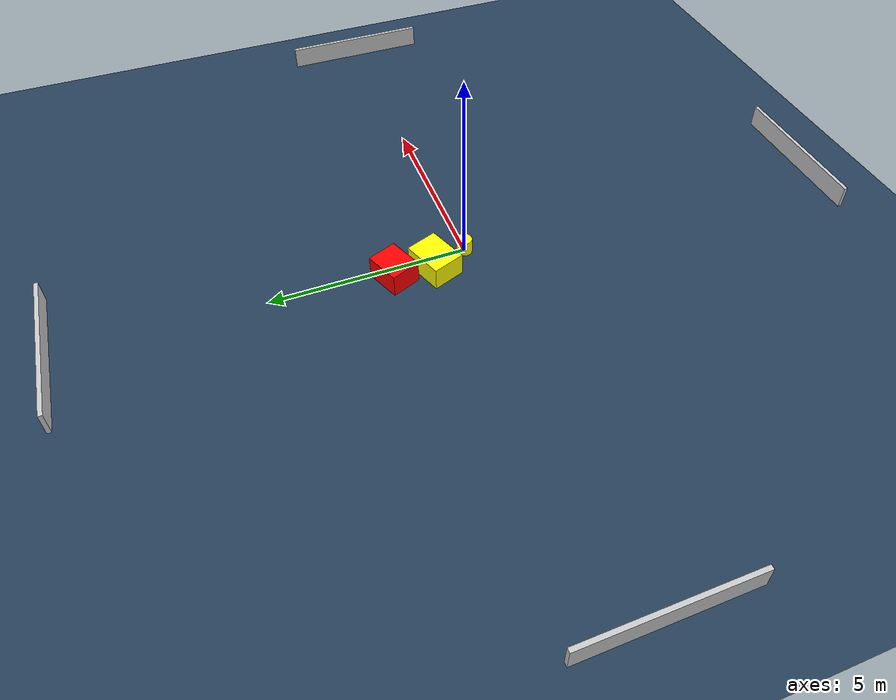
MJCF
<?xml version="1.0" ?>
<mujoco model="generated_environment">
  <option timestep="0.01" integrator="RK4" cone="elliptic"/>
  <default>
    <geom density="1"/>
  </default>
  <asset>
    <texture builtin="gradient" height="3072" name="skybox" rgb1="0.3 0.5 0.7" rgb2="0 0 0" type="skybox" width="512"/>
    <texture builtin="checker" height="300" name="groundplane" rgb1="0.2 0.3 0.4" rgb2="0.1 0.2 0.3" type="2d" width="300"/>
    <material name="groundplane" reflectance="0.2" texrepeat="5 5" texture="groundplane"/>
  </asset>
  <worldbody>
    <light dir="0 0 -1" directional="true" pos="0 0 1.5"/>
    <geom condim="3" friction="0.5 0.005 0.001" material="groundplane" name="floor" pos="0 0 0" size="0 0 0.05" type="plane"/>
    <body name="walls">
      <geom name="wall_1" condim="4" pos="-10.0 0.0 0.3" rgba="0.800000011920929 0.800000011920929 0.800000011920929 1.0" size="0.05 2.0 0.3" type="box"/>
      <geom name="wall_2" condim="4" pos="10.0 0.0 0.3" rgba="0.800000011920929 0.800000011920929 0.800000011920929 1.0" size="0.05 2.0 0.3" type="box"/>
      <geom name="wall_3" condim="4" pos="0.0 -10.0 0.3" rgba="0.800000011920929 0.800000011920929 0.800000011920929 1.0" size="2.0 0.05 0.3" type="box"/>
      <geom name="wall_4" condim="4" pos="0.0 10.0 0.3" rgba="0.800000011920929 0.800000011920929 0.800000011920929 1.0" size="2.0 0.05 0.3" type="box"/>
    </body>
    <body name="robot">
      <joint name="joint_x" type="slide" pos="0 0 0" axis="1 0 0"/>
      <joint name="joint_y" type="slide" pos="0 0 0" axis="0 1 0"/>
      <geom name="robot" type="cylinder" pos="0.0 0.0 0.2" size="0.2 0.2 0.0" mass="5.0" friction="1.0 0.005 0.0001" condim="4" rgba="1.0 1.0 0.0 1.0"/>
    </body>
    <body name="obstacle_1_movable">
      <geom name="obstacle_1_movable" condim="4" pos="-0.36027109540276464 0.9050402179000905 0.3" euler="0 0 290.5641424601948" friction="0.0 0.005 0.001" rgba="1.0 1.0 0.0 1.0" size="0.41556908213828797 0.5318612842699559 0.3" type="box" mass="0.1"/>
      <joint type="free"/>
    </body>
    <body name="obstacle_2_static">
      <geom name="obstacle_2_static" condim="4" pos="-0.29172776983447907 1.9350186666702067 0.3" euler="0 0 202.37820495564898" friction="0.0 0.005 0.001" rgba="1.0 0.0 0.0 1.0" size="0.4598729397786273 0.38220887249754276 0.3" type="box"/>
    </body>
  </worldbody>
  <actuator>
    <motor name="actuator_x" joint="joint_x" gear="1" ctrlrange="-1 1"/>
    <motor name="actuator_y" joint="joint_y" gear="1" ctrlrange="-1 1"/>
  </actuator>
</mujoco>
